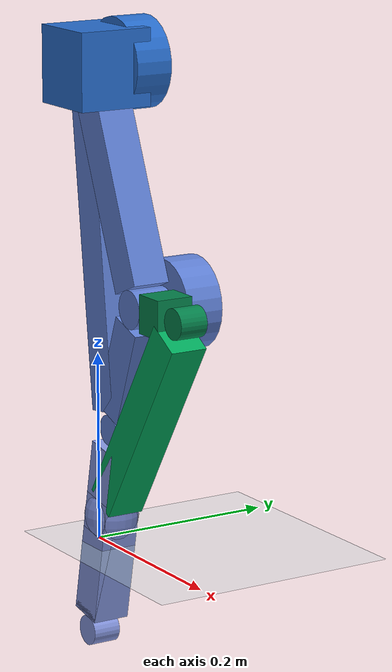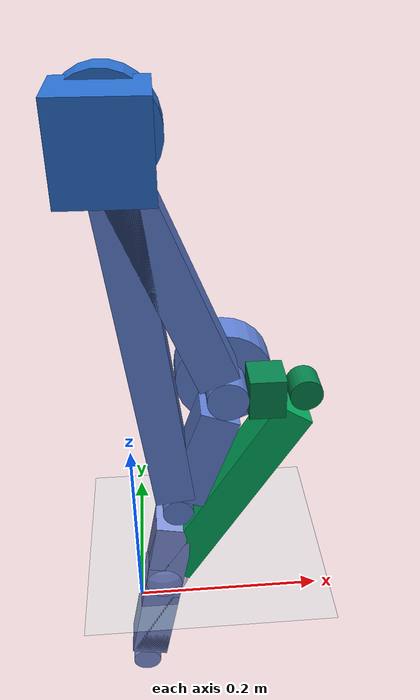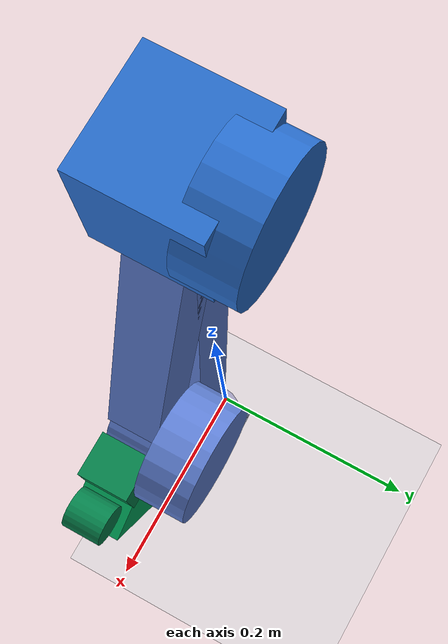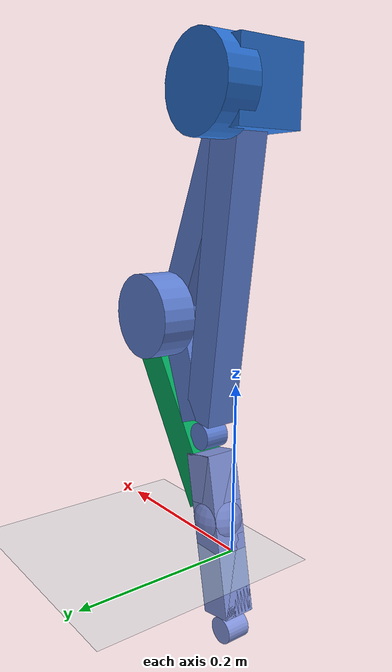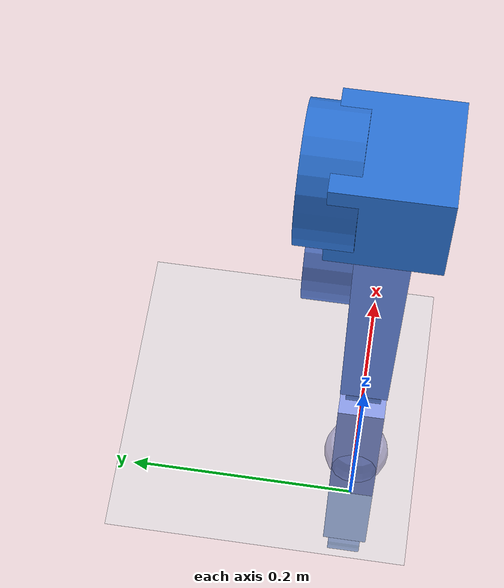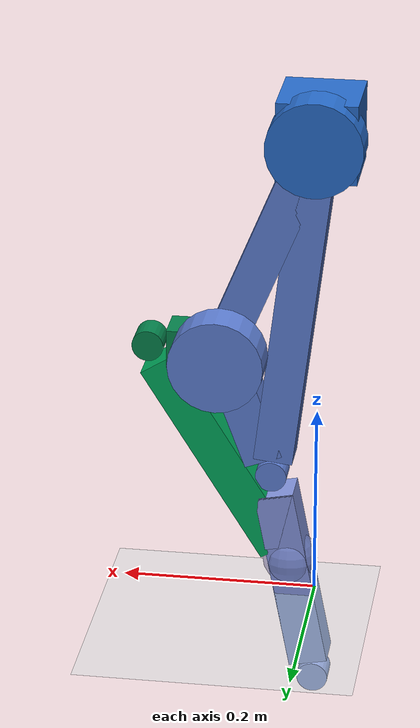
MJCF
<?xml version="1.0" encoding="utf-8"?>
<mujoco model="robot_1">
  <compiler angle="radian" inertiafromgeom="true" coordinate="local" />
  <option timestep="0.01" gravity="0 0 -9.81" integrator="RK4" />
  <size njmax="500" nconmax="100" />
  <worldbody>
    <geom name="floor" type="plane" size="10 10 0.1" pos="0 0 0" rgba="0.8 0.9 0.9 1" />
    <light name="light1" pos="0 0 3" dir="0 0 -1" directional="true" />
    <body name="robot_root" pos="0 0 0.5" quat="1 0 0 0">
      <body name="G">
        <geom name="G_vis0" type="box" rgba="0.1568627450980392 0.42745098039215684 0.8 1.0" contype="1" conaffinity="1" pos="0.0 0.0 0.0" quat="1.0 0.0 0.0 0.0" size="0.04 0.04 0.04" />
        <inertial pos="0.0 0.0 0.0" mass="0.08347399110019947" diaginertia="8.903892384021277e-05 8.903892384021277e-05 8.903892384021277e-05" />
        <body name="L3" pos="0.0 0.0 0.0" quat="0.06047668423188785 5.741713201658111e-17 0.998169610168691 5.741713201658111e-17">
          <joint name="Main_ground" type="hinge" axis="0 1 0" range="-3.141592653589793 3.141592653589793" damping="0.1" />
          <geom name="L3_vis0" type="box" rgba="0.37254901960784315 0.5019607843137255 0.8352941176470589 1.0" contype="1" conaffinity="1" pos="-0.0335453797116682 0.0 0.30749931402362507" quat="0.971927930023144 0.0 0.23527876835984662 0.0" size="0.019999999552965164 0.019999999552965164 0.053347601805225145" />
          <geom name="L3_vis1" type="box" rgba="0.37254901960784315 0.5019607843137255 0.8352941176470589 1.0" contype="1" conaffinity="1" pos="-0.03354537971166819 0.0 0.12113609340324624" quat="0.13466621351140315 5.242864835118275e-17 0.9908910186990804 5.242864835118275e-17" size="0.019999999552965164 0.019999999552965164 0.10569505056835027" />
          <geom name="L3_vis2" type="box" rgba="0.37254901960784315 0.5019607843137255 0.8352941176470589 1.0" contype="1" conaffinity="1" pos="-8.0396400129425e-18 0.0 0.18636322062037886" quat="1.0 0.0 0.0 0.0" size="0.019999999552965164 0.019999999552965164 0.1663632210674137" />
          <inertial pos="-0.02236 0.0 0.205" mass="0.7542480601566578" diaginertia="0.12500084161050556 0.12869753843871176 0.003897829635256627" />
          <body name="L4" pos="-1.6079280025885e-17 0.0 0.3727264412407577" quat="0.9876821263722173 0.0 0.15647369505720535 0.0">
            <joint name="Main_knee" type="hinge" axis="0 1 0" range="-3.141592653589793 3.141592653589793" damping="0.1" />
            <geom name="L4_vis0" type="box" rgba="0.5176470588235295 0.5843137254901961 0.8705882352941177 1.0" contype="1" conaffinity="1" pos="2.0816681711721685e-17 0.0 0.11718041645257968" quat="1.0 0.0 0.0 0.0" size="0.019999999552965164 0.019999999552965164 0.09718041689961451" />
            <geom name="L4_vis1" type="box" rgba="0.5176470588235295 0.5843137254901961 0.8705882352941177 1.0" contype="1" conaffinity="1" pos="3.469446951953614e-17 0.0 0.16639619136266312" quat="1.0 0.0 0.0 0.0" size="0.019999999552965164 0.019999999552965164 0.04796464198953107" />
            <geom name="L4_vis2" type="box" rgba="0.5176470588235295 0.5843137254901961 0.8705882352941177 1.0" contype="1" conaffinity="1" pos="1.3877787807814457e-17 0.0 0.04921577491008344" quat="1.0 0.0 0.0 0.0" size="0.019999999552965164 0.019999999552965164 0.02921577535711828" />
            <inertial pos="0.0 0.0 0.11093" mass="0.27110860821538063" diaginertia="0.09751211219620336 0.09769377780925784 0.00025396123848237884" />
            <body name="EE" pos="4.163336342344337e-17 0.0 0.23436083290515936" quat="0.09645554711881314 5.504063266352305e-17 0.9953372932981113 5.504063266352305e-17">
              <geom name="EE_vis0" type="sphere" rgba="0.6431372549019608 0.6666666666666666 0.9058823529411765 1.0" contype="1" conaffinity="1" pos="0.0 0.0 0.0" quat="1.0 0.0 0.0 0.0" size="0.002142857142857143" />
              <inertial pos="0.0 0.0 0.0" mass="2.979933439782622e-05" diaginertia="5.473347134294612e-11 5.473347134294612e-11 5.473347134294612e-11" />
            </body>
            <body name="Main_ee_L4Unit" pos="4.163336342344337e-17 0.0 0.23436083290515936" quat="0.06820437145077145 0.06820437145077136 0.7038097496589579 -0.703809749658958">
              <geom name="Main_ee_L4Unit_vis0" type="cylinder" rgba="0.5176470588235295 0.5843137254901961 0.8705882352941177 0.9" contype="1" conaffinity="1" size="0.016 0.015" />
              <inertial pos="0 0 0" mass="0.1" diaginertia="0.00065 0.00065 0.0008" />
            </body>
            <body name="Main_connection_2_L4Pseudo" pos="2.7755575615628914e-17 0.0 0.09843154982016689" quat="0.09645554711881314 5.504063266352305e-17 0.9953372932981113 5.504063266352305e-17">
              <joint name="Main_connection_2_L4_revolute" type="hinge" axis="0 1 0" range="-3.141592653589793 3.141592653589793" damping="0.1" />
              <geom name="Main_connection_2_L4Pseudo_vis0" type="sphere" rgba="0.5176470588235295 0.5843137254901961 0.8705882352941177 0.5" contype="1" conaffinity="1" size="0.02857142793280738" />
              <inertial pos="0 0 0" mass="0.05" diaginertia="1.632652988239212e-05 1.632652988239212e-05 1.632652988239212e-05" />
            </body>
          </body>
          <body name="Main_knee_L3Unit" pos="-1.6079280025885e-17 0.0 0.3727264412407577" quat="0.6983967292145435 0.6983967292145434 0.11064361085226583 -0.1106436108522659">
            <geom name="Main_knee_L3Unit_vis0" type="cylinder" rgba="0.37254901960784315 0.5019607843137255 0.8352941176470589 0.9" contype="1" conaffinity="1" size="0.016 0.015" />
            <inertial pos="0 0 0" mass="0.1" diaginertia="0.00065 0.00065 0.0008" />
          </body>
          <body name="L6" pos="-0.06709075942333638 0.0 0.24227218680649248" quat="0.7485759736486595 0.0 -0.6630490266005686 0.0">
            <joint name="Main_connection_1" type="hinge" axis="0 1 0" range="-3.141592653589793 3.141592653589793" damping="0.1" />
            <geom name="L6_vis0" type="box" rgba="0.01568627450980392 0.5058823529411764 0.29411764705882354 1.0" contype="1" conaffinity="1" pos="0.0 0.0 0.0375" quat="1.0 0.0 0.0 0.0" size="0.02 0.02 0.017499999999999984" />
            <inertial pos="0.0 0.0 0.0375" mass="0.04048799999999997" diaginertia="9.531549999999985e-06 9.531549999999985e-06 1.0796799999999991e-05" />
            <body name="L5" pos="0.0 0.0 0.07499999999999997" quat="0.4869558309959911 2.3664509268372513e-17 0.8734265960336929 2.3664509268372513e-17">
              <joint name="branch_1" type="hinge" axis="0 1 0" range="-3.141592653589793 3.141592653589793" damping="0.1" />
              <geom name="L5_vis0" type="box" rgba="0.0 0.6627450980392157 0.3607843137254902 1.0" contype="1" conaffinity="1" pos="-0.0 0.0 0.13766" quat="1.0 0.0 0.0 0.0" size="0.02 0.02 0.11766099892489519" />
              <inertial pos="-0.0 0.0 0.13766" mass="0.2722204871126375" diaginertia="0.001292512914843472 0.001292512914843472 7.259212989670334e-05" />
              <body name="Main_connection_2_L5Pseudo" pos="-2.0816681711721685e-17 0.0 0.2753219978497904" quat="0.273276098688512 4.216823509701657e-17 0.9619356391597031 4.216823509701657e-17">
                <geom name="Main_connection_2_L5Pseudo_vis0" type="sphere" rgba="0.0 0.6627450980392157 0.3607843137254902 0.5" contype="1" conaffinity="1" size="0.028571428571428574" />
                <inertial pos="0 0 0" mass="0.05" diaginertia="1.6326530612244903e-05 1.6326530612244903e-05 1.6326530612244903e-05" />
              </body>
            </body>
            <body name="branch_1_L6Unit" pos="0.0 0.0 0.07499999999999997" quat="0.34432977023559574 0.3443297702355957 0.6176058689241074 -0.6176058689241075">
              <geom name="branch_1_L6Unit_vis0" type="cylinder" rgba="0.01568627450980392 0.5058823529411764 0.29411764705882354 0.9" contype="1" conaffinity="1" size="0.016 0.015" />
              <inertial pos="0 0 0" mass="0.1" diaginertia="0.00065 0.00065 0.0008" />
            </body>
          </body>
          <body name="Main_connection_1_L3Actuator" pos="-0.06709075942333638 0.03999999955296517 0.24227218680649248" quat="0.5293231472002894 0.5293231472002893 -0.46884646296840177 0.4688464629684016">
            <geom name="Main_connection_1_L3Actuator_vis0" type="cylinder" rgba="0.37254901960784315 0.5019607843137255 0.8352941176470589 0.9" contype="1" conaffinity="1" size="0.048 0.02" />
            <inertial pos="0 0 0" mass="0.44" diaginertia="0.0067466666666666664 0.0067466666666666664 0.01056" />
          </body>
          <body name="Main_connection_1_L3Unit" pos="-0.06709075942333638 0.0 0.24227218680649248" quat="0.5293231472002894 0.5293231472002893 -0.46884646296840177 0.4688464629684016">
            <geom name="Main_connection_1_L3Unit_vis0" type="cylinder" rgba="0.37254901960784315 0.5019607843137255 0.8352941176470589 0.9" contype="1" conaffinity="1" size="0.019999999552965164 0.019999999552965164" />
            <inertial pos="0 0 0" mass="0.1" diaginertia="0.0008333333147068819 0.0008333333147068819 0.0009999999776482583" />
          </body>
        </body>
        <body name="Main_ground_GActuator" pos="0.0 0.03999999955296517 0.0" quat="-0.04276347352404526 -0.04276347352404564 -0.7058125001246142 0.7058125001246138">
          <geom name="Main_ground_GActuator_vis0" type="cylinder" rgba="0.1568627450980392 0.42745098039215684 0.8 0.9" contype="1" conaffinity="1" size="0.048 0.02" />
          <inertial pos="0 0 0" mass="0.44" diaginertia="0.0067466666666666664 0.0067466666666666664 0.01056" />
        </body>
        <body name="Main_ground_GUnit" pos="0.0 0.0 0.0" quat="-0.04276347352404526 -0.04276347352404564 -0.7058125001246142 0.7058125001246138">
          <geom name="Main_ground_GUnit_vis0" type="cylinder" rgba="0.1568627450980392 0.42745098039215684 0.8 0.9" contype="1" conaffinity="1" size="0.019999999552965164 0.019999999552965164" />
          <inertial pos="0 0 0" mass="0.1" diaginertia="0.0008333333147068819 0.0008333333147068819 0.0009999999776482583" />
        </body>
      </body>
    </body>
  </worldbody>
  <actuator>
    <motor name="Main_ground_motor" joint="Main_ground" gear="80" ctrlrange="-1.0 1.0" forcerange="-50 50" />
    <motor name="Main_knee_motor" joint="Main_knee" gear="150" ctrlrange="-1.0 1.0" forcerange="-50 50" />
    <motor name="Main_connection_2_L4_revolute_motor" joint="Main_connection_2_L4_revolute" gear="1" ctrlrange="-1.0 1.0" forcerange="-50 50" />
    <motor name="Main_connection_1_motor" joint="Main_connection_1" gear="1" ctrlrange="-1.0 1.0" forcerange="-50 50" />
    <motor name="branch_1_motor" joint="branch_1" gear="1" ctrlrange="-1.0 1.0" forcerange="-50 50" />
  </actuator>
</mujoco>
